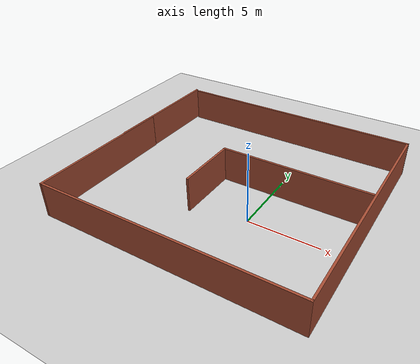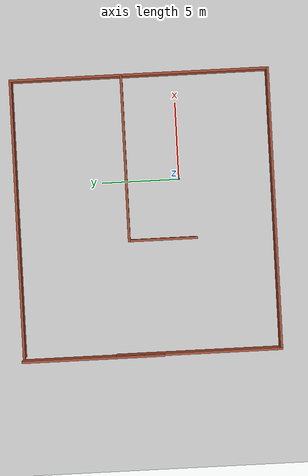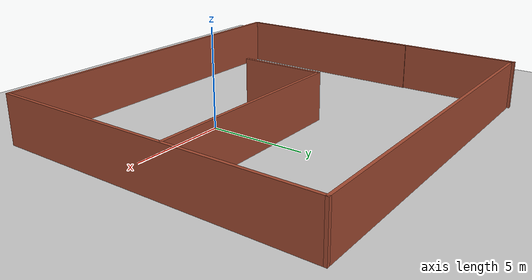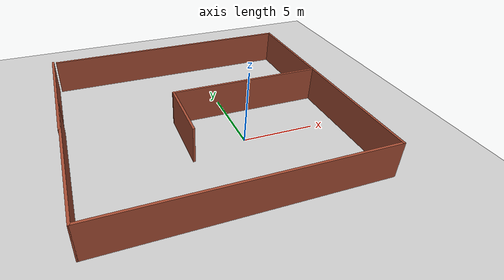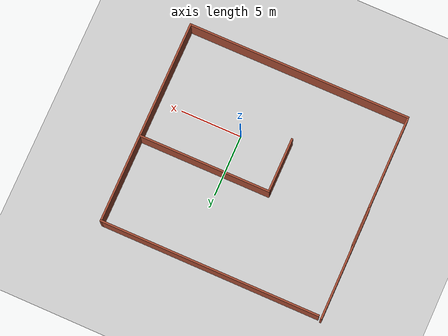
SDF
<sdf version="1.7">
 <world name="default">
  <light name="sun" type="directional">
   <pose>0 0 10 0 -0 0</pose>
   <diffuse>0.8 0.8 0.8 1</diffuse>
   <specular>0.2 0.2 0.2 1</specular>
   <attenuation>
    <range>1000</range>
    <constant>0.9</constant>
    <linear>0.01</linear>
    <quadratic>0.001</quadratic>
   </attenuation>
   <direction>-0.5 0.1 -0.9</direction>
   <spot><inner_angle>0</inner_angle><outer_angle>0</outer_angle><falloff>0</falloff></spot>
  </light>
  <model name="ground_plane">
   <static>1</static>
   <link name="link">
    <collision name="collision">
     <geometry><plane><normal>0 0 1</normal><size>100 100</size></plane></geometry>
     <surface>
      <contact><collide_bitmask>65535</collide_bitmask></contact>
      <friction><ode><mu>100</mu><mu2>50</mu2></ode></friction>
     </surface>
    </collision>
    <visual name="visual">
     <cast_shadows>0</cast_shadows>
     <geometry><plane><normal>0 0 1</normal><size>100 100</size></plane></geometry>
     <material>
      <script><uri>file://media/materials/scripts/gazebo.material</uri><name>Gazebo/Grey</name></script>
     </material>
    </visual>
   </link>
  </model>
  <gravity>0 0 -9.8</gravity>
  <magnetic_field>6e-06 2.3e-05 -4.2e-05</magnetic_field>
  <atmosphere type="adiabatic"/>
  <physics type="ode">
   <max_step_size>0.001</max_step_size>
   <real_time_factor>1</real_time_factor>
   <real_time_update_rate>1000</real_time_update_rate>
  </physics>
  <scene><ambient>0.4 0.4 0.4 1</ambient><background>0.7 0.7 0.7 1</background><shadows>1</shadows></scene>
  <spherical_coordinates>
   <surface_model>EARTH_WGS84</surface_model>
   <latitude_deg>0</latitude_deg>
   <longitude_deg>0</longitude_deg>
   <elevation>0</elevation>
   <heading_deg>0</heading_deg>
  </spherical_coordinates>
  <model name="worlda">
   <pose>-2.20983 2.31915 0 0 -0 0</pose>
   <link name="Wall_11">
    <collision name="Wall_11_Collision">
     <geometry><box><size>9.25 0.15 2.5</size></box></geometry>
     <pose>0 0 1.25 0 -0 0</pose>
    </collision>
    <visual name="Wall_11_Visual">
     <pose>0 0 1.25 0 -0 0</pose>
     <geometry><box><size>9.25 0.15 2.5</size></box></geometry>
     <material>
      <script><uri>file://media/materials/scripts/gazebo.material</uri><name>Gazebo/Bricks</name></script>
      <ambient>1 1 1 1</ambient>
     </material>
     <meta><layer>0</layer></meta>
    </visual>
    <pose>-9.07302 3.801 0 0 -0 -1.5708</pose>
   </link>
   <link name="Wall_13">
    <collision name="Wall_13_Collision">
     <geometry><box><size>10.75 0.15 2.5</size></box></geometry>
     <pose>0 0 1.25 0 -0 0</pose>
    </collision>
    <visual name="Wall_13_Visual">
     <pose>0 0 1.25 0 -0 0</pose>
     <geometry><box><size>10.75 0.15 2.5</size></box></geometry>
     <material>
      <script><uri>file://media/materials/scripts/gazebo.material</uri><name>Gazebo/Bricks</name></script>
      <ambient>1 1 1 1</ambient>
     </material>
     <meta><layer>0</layer></meta>
    </visual>
    <pose>3.69126 1.10901 0 0 -0 3.14159</pose>
   </link>
   <link name="Wall_14">
    <collision name="Wall_14_Collision">
     <geometry><box><size>4.5 0.15 2.5</size></box></geometry>
     <pose>0 0 1.25 0 -0 0</pose>
    </collision>
    <visual name="Wall_14_Visual">
     <pose>0 0 1.25 0 -0 0</pose>
     <geometry><box><size>4.5 0.15 2.5</size></box></geometry>
     <material>
      <script><uri>file://media/materials/scripts/gazebo.material</uri><name>Gazebo/Bricks</name></script>
      <ambient>1 1 1 1</ambient>
     </material>
     <meta><layer>0</layer></meta>
    </visual>
    <pose>-1.60874 -1.06599 0 0 -0 -1.5708</pose>
   </link>
   <link name="Wall_2">
    <collision name="Wall_2_Collision">
     <geometry><box><size>10.75 0.15 2.5</size></box></geometry>
     <pose>0 0 1.25 0 -0 0</pose>
    </collision>
    <visual name="Wall_2_Visual">
     <pose>0 0 1.25 0 -0 0</pose>
     <geometry><box><size>10.75 0.15 2.5</size></box></geometry>
     <material>
      <script><uri>file://media/materials/scripts/gazebo.material</uri><name>Gazebo/Bricks</name></script>
      <ambient>1 1 1 1</ambient>
     </material>
     <meta><layer>0</layer></meta>
    </visual>
    <pose>-9.02698 -3.051 0 0 -0 -1.5708</pose>
   </link>
   <link name="Wall_3">
    <collision name="Wall_3_Collision">
     <geometry><box><size>18.25 0.15 2.5</size></box></geometry>
     <pose>0 0 1.25 0 -0 0</pose>
    </collision>
    <visual name="Wall_3_Visual">
     <pose>0 0 1.25 0 -0 0</pose>
     <geometry><box><size>18.25 0.15 2.5</size></box></geometry>
     <material>
      <script><uri>file://media/materials/scripts/gazebo.material</uri><name>Gazebo/Bricks</name></script>
      <ambient>1 1 1 1</ambient>
     </material>
     <meta><layer>0</layer></meta>
    </visual>
    <pose>0.023016 -8.351 0 0 -0 0</pose>
   </link>
   <link name="Wall_4">
    <collision name="Wall_4_Collision">
     <geometry><box><size>16.75 0.15 2.5</size></box></geometry>
     <pose>0 0 1.25 0 -0 0</pose>
    </collision>
    <visual name="Wall_4_Visual">
     <pose>0 0 1.25 0 -0 0</pose>
     <geometry><box><size>16.75 0.15 2.5</size></box></geometry>
     <material>
      <script><uri>file://media/materials/scripts/gazebo.material</uri><name>Gazebo/Bricks</name></script>
      <ambient>1 1 1 1</ambient>
     </material>
     <meta><layer>0</layer></meta>
    </visual>
    <pose>9.07302 -0.050996 0 0 -0 1.5708</pose>
   </link>
   <link name="Wall_5">
    <collision name="Wall_5_Collision">
     <geometry><box><size>18 0.15 2.5</size></box></geometry>
     <pose>0 0 1.25 0 -0 0</pose>
    </collision>
    <visual name="Wall_5_Visual">
     <pose>0 0 1.25 0 -0 0</pose>
     <geometry><box><size>18 0.15 2.5</size></box></geometry>
     <material>
      <script><uri>file://media/materials/scripts/gazebo.material</uri><name>Gazebo/Bricks</name></script>
      <ambient>1 1 1 1</ambient>
     </material>
     <meta><layer>0</layer></meta>
    </visual>
    <pose>0.148016 8.249 0 0 -0 3.14159</pose>
   </link>
   <static>1</static>
  </model>
 </world>
</sdf>
